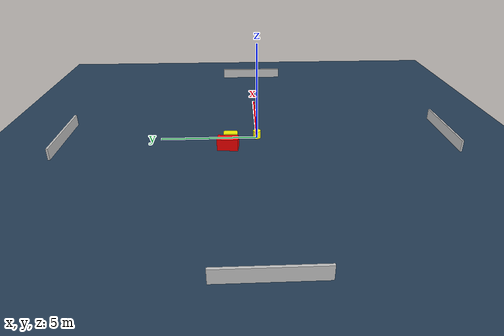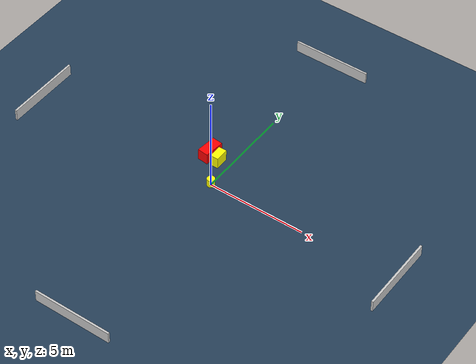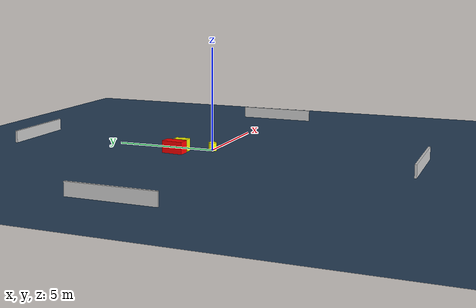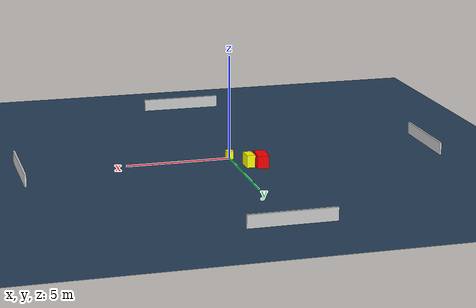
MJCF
<?xml version="1.0" ?>
<mujoco model="generated_environment">
  <option timestep="0.01" integrator="RK4" cone="elliptic"/>
  <default>
    <geom density="1"/>
  </default>
  <asset>
    <texture builtin="gradient" height="3072" name="skybox" rgb1="0.3 0.5 0.7" rgb2="0 0 0" type="skybox" width="512"/>
    <texture builtin="checker" height="300" name="groundplane" rgb1="0.2 0.3 0.4" rgb2="0.1 0.2 0.3" type="2d" width="300"/>
    <material name="groundplane" reflectance="0.2" texrepeat="5 5" texture="groundplane"/>
  </asset>
  <worldbody>
    <light dir="0 0 -1" directional="true" pos="0 0 1.5"/>
    <geom condim="3" friction="0.5 0.005 0.001" material="groundplane" name="floor" pos="0 0 0" size="0 0 0.05" type="plane"/>
    <body name="walls">
      <geom name="wall_1" condim="4" pos="-10.0 0.0 0.3" rgba="0.800000011920929 0.800000011920929 0.800000011920929 1.0" size="0.05 2.0 0.3" type="box"/>
      <geom name="wall_2" condim="4" pos="10.0 0.0 0.3" rgba="0.800000011920929 0.800000011920929 0.800000011920929 1.0" size="0.05 2.0 0.3" type="box"/>
      <geom name="wall_3" condim="4" pos="0.0 -10.0 0.3" rgba="0.800000011920929 0.800000011920929 0.800000011920929 1.0" size="2.0 0.05 0.3" type="box"/>
      <geom name="wall_4" condim="4" pos="0.0 10.0 0.3" rgba="0.800000011920929 0.800000011920929 0.800000011920929 1.0" size="2.0 0.05 0.3" type="box"/>
    </body>
    <body name="robot">
      <joint name="joint_x" type="slide" pos="0 0 0" axis="1 0 0"/>
      <joint name="joint_y" type="slide" pos="0 0 0" axis="0 1 0"/>
      <geom name="robot" type="cylinder" pos="0.0 0.0 0.2" size="0.2 0.2 0.0" mass="5.0" friction="1.0 0.005 0.0001" condim="4" rgba="1.0 1.0 0.0 1.0"/>
    </body>
    <body name="obstacle_1_movable">
      <geom name="obstacle_1_movable" condim="4" pos="-0.5777284373850843 1.3739921837761233 0.3" euler="0 0 271.02757513949507" friction="0.0 0.005 0.001" rgba="1.0 1.0 0.0 1.0" size="0.3490749460190907 0.20410020045957636 0.3" type="box" mass="0.1"/>
      <joint type="free"/>
    </body>
    <body name="obstacle_2_static">
      <geom name="obstacle_2_static" condim="4" pos="-1.147176896690583 1.5023650047745212 0.3" euler="0 0 263.98092188439074" friction="0.0 0.005 0.001" rgba="1.0 0.0 0.0 1.0" size="0.5195009749810151 0.27289822735285973 0.3" type="box"/>
    </body>
  </worldbody>
  <actuator>
    <motor name="actuator_x" joint="joint_x" gear="1" ctrlrange="-1 1"/>
    <motor name="actuator_y" joint="joint_y" gear="1" ctrlrange="-1 1"/>
  </actuator>
</mujoco>
